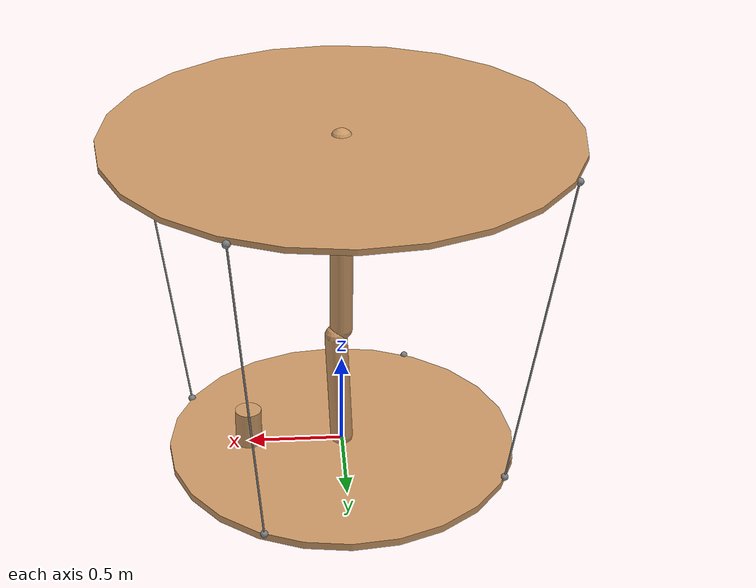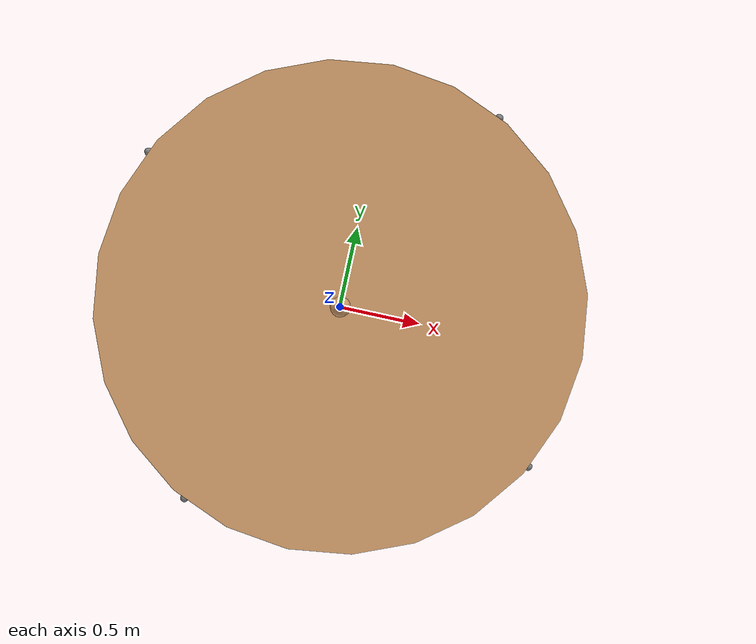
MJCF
<mujoco model="example">
  <compiler coordinate="global"/>

  <default>
    <geom rgba=".8 .6 .4 1"/>
  </default>

  <asset>
    <texture type="skybox" builtin="gradient" rgb1="1 1 1" rgb2=".6 .8 1" width="256" height="256"/>
  </asset>

  <worldbody>
    <light pos="0 1 1" dir="0 -1 -1" diffuse="1 1 1"/>

    <body>
    <geom type="cylinder" fromto="0 0 1.7918  0 0 1.7618" size="1.2032592"/>
    <site name="b1" pos="-1.0757 0.53925 1.7618" size="0.02"/>
    <site name="b2" pos="1.0622 -0.56526 1.7618" size="0.02"/>
    <site name="b3" pos="0.56083 1.0646 1.7618" size="0.02"/>
    <site name="b4" pos="-0.54373 -1.0734 1.7618" size="0.02"/>
      <geom type="capsule" fromto="0 0 1.7618  0.0012361 -0.011761 0.68159" size="0.06"/>
      <joint type="hinge" pos="0.00000 0.00000 1.7618" axis="0 1 0"/>
      <body>
        <geom type="capsule" fromto="0.0012361 -0.011761 0.68159 0.029332 -0.0019520 0.64292" size="0.04"/>
        <joint type="hinge" pos="0.0012361 -0.011761 0.68159" axis="-0.102940441036437 0.979412873099072 0.173648177666930"/>

          <body>
          <geom type="capsule" fromto="0.029332 -0.0019520 0.64292 0 0 0.02" size="0.06"/>
          <joint type="hinge" pos="0.029332 -0.0019520 0.64292" axis="0.6947138315421153 0.3907311284892736 0.603905520337057"/>
          <geom type="cylinder" fromto="0 0 0 0 0 -0.04" size="0.925584"/>
          <site name="p1" pos="-0.82894 0.41179 0" size="0.02"/>
          <site name="p2" pos="0.81550 -0.43779 0" size="0.02"/>
          <site name="p3" pos="0.43337 0.81786 0" size="0.02"/>
          <site name="p4" pos="-0.41627 -0.82670 0" size="0.02"/>
          <site name="end1" pos="0 0 0" type="sphere" size="0.01"/>
          </body>

      </body>
    </body>
    <body>
      <geom type="cylinder" fromto="0.5 0 0.2  0.5 0 0" size="0.07"/>
      <joint type="free"/>
    </body>
  </worldbody>

  <tendon>
    <spatial limited="true" range="0 1.7835" width="0.005">
      <site site="b1"/>
      <site site="p1"/>
    </spatial>

    <spatial limited="true" range="0 1.7835" width="0.005">
      <site site="b2"/>
      <site site="p2"/>
    </spatial>

    <spatial limited="true" range="0 1.7835" width="0.005">
      <site site="b3"/>
      <site site="p3"/>
    </spatial>

    <spatial limited="true" range="0 1.7835" width="0.005">
      <site site="b3"/>
      <site site="p3"/>
    </spatial>
  </tendon>
</mujoco>
